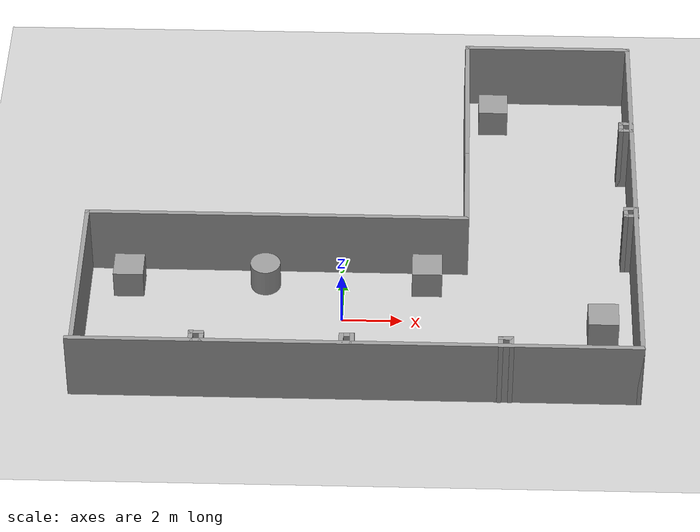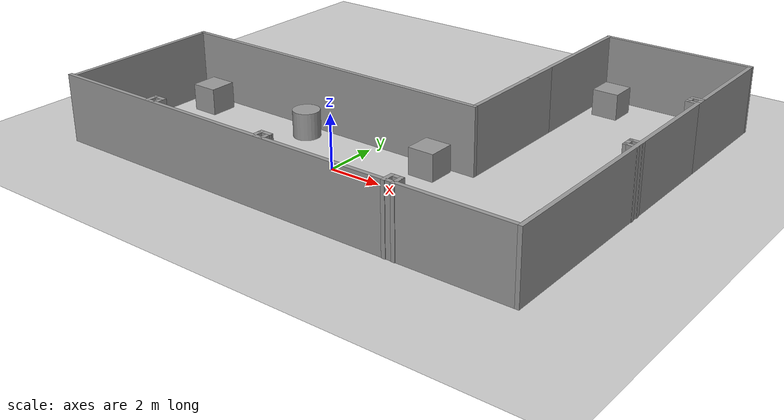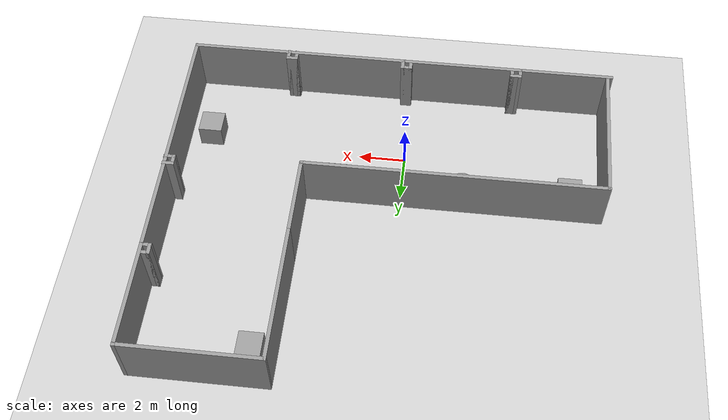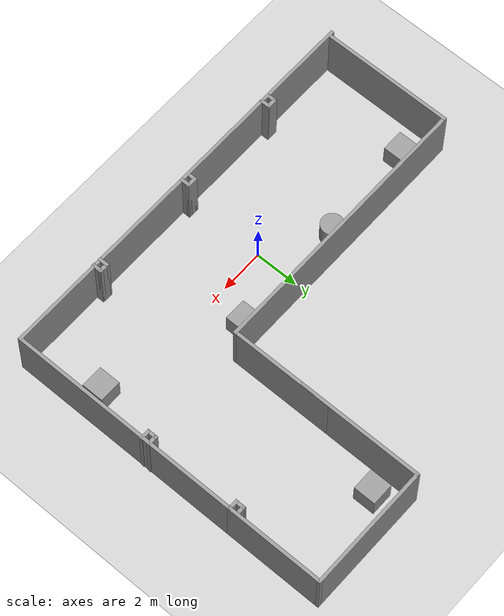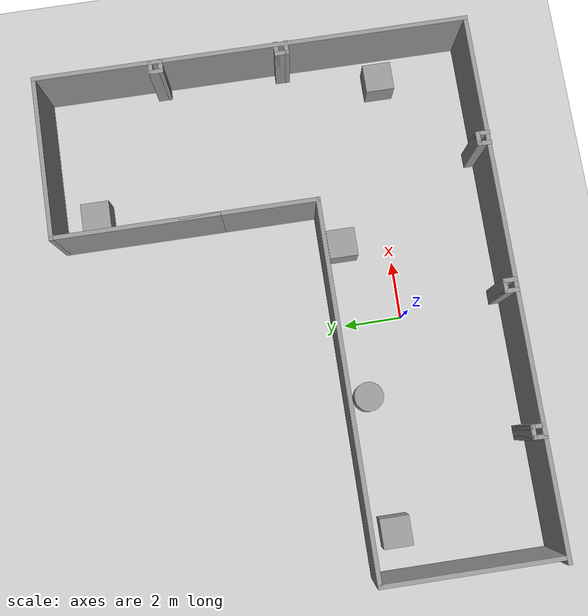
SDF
<sdf version="1.7">
 <world name="default">
  <light name="sun" type="directional">
   <pose>0 0 10 0 -0 0</pose>
   <diffuse>0.8 0.8 0.8 1</diffuse>
   <specular>0.2 0.2 0.2 1</specular>
   <attenuation>
    <range>1000</range>
    <constant>0.9</constant>
    <linear>0.01</linear>
    <quadratic>0.001</quadratic>
   </attenuation>
   <direction>-0.5 0.1 -0.9</direction>
   <spot><inner_angle>0</inner_angle><outer_angle>0</outer_angle><falloff>0</falloff></spot>
  </light>
  <model name="ground_plane">
   <static>1</static>
   <link name="link">
    <collision name="collision">
     <geometry><plane><normal>0 0 1</normal><size>100 100</size></plane></geometry>
     <surface>
      <contact><collide_bitmask>65535</collide_bitmask></contact>
      <friction><ode><mu>100</mu><mu2>50</mu2></ode></friction>
     </surface>
    </collision>
    <visual name="visual">
     <cast_shadows>0</cast_shadows>
     <geometry><plane><normal>0 0 1</normal><size>100 100</size></plane></geometry>
     <material>
      <script><uri>file://media/materials/scripts/gazebo.material</uri><name>Gazebo/Grey</name></script>
     </material>
    </visual>
   </link>
  </model>
  <gravity>0 0 -9.8</gravity>
  <magnetic_field>6e-06 2.3e-05 -4.2e-05</magnetic_field>
  <atmosphere type="adiabatic"/>
  <physics type="ode">
   <max_step_size>0.001</max_step_size>
   <real_time_factor>1</real_time_factor>
   <real_time_update_rate>1000</real_time_update_rate>
  </physics>
  <scene><ambient>0.4 0.4 0.4 1</ambient><background>0.7 0.7 0.7 1</background><shadows>1</shadows></scene>
  <spherical_coordinates>
   <surface_model>EARTH_WGS84</surface_model>
   <latitude_deg>0</latitude_deg>
   <longitude_deg>0</longitude_deg>
   <elevation>0</elevation>
   <heading_deg>0</heading_deg>
  </spherical_coordinates>
  <model name="hanhlang5">
   <pose>0.510065 3.86268 0 0 -0 0</pose>
   <link name="Wall_10">
    <collision name="Wall_10_Collision">
     <geometry><box><size>4.75 0.15 2.5</size></box></geometry>
     <pose>0 0 1.25 0 -0 0</pose>
    </collision>
    <visual name="Wall_10_Visual">
     <pose>0 0 1.25 0 -0 0</pose>
     <geometry><box><size>4.75 0.15 2.5</size></box></geometry>
     <material>
      <script><uri>file://media/materials/scripts/gazebo.material</uri><name>Gazebo/Grey</name></script>
      <ambient>1 1 1 1</ambient>
     </material>
     <meta><layer>0</layer></meta>
    </visual>
    <pose>3.56396 0.835046 0 0 -0 -1.5708</pose>
   </link>
   <link name="Wall_11">
    <collision name="Wall_11_Collision">
     <geometry><box><size>12.75 0.15 2.5</size></box></geometry>
     <pose>0 0 1.25 0 -0 0</pose>
    </collision>
    <visual name="Wall_11_Visual">
     <pose>0 0 1.25 0 -0 0</pose>
     <geometry><box><size>12.75 0.15 2.5</size></box></geometry>
     <material>
      <script><uri>file://media/materials/scripts/gazebo.material</uri><name>Gazebo/Grey</name></script>
      <ambient>1 1 1 1</ambient>
     </material>
     <meta><layer>0</layer></meta>
    </visual>
    <pose>-2.73604 -1.46495 0 0 -0 3.14159</pose>
   </link>
   <link name="Wall_12">
    <collision name="Wall_12_Collision">
     <geometry><box><size>0.15 0.15 2.5</size></box></geometry>
     <pose>0 0 1.25 0 -0 0</pose>
    </collision>
    <visual name="Wall_12_Visual">
     <pose>0 0 1.25 0 -0 0</pose>
     <geometry><box><size>0.15 0.15 2.5</size></box></geometry>
     <material>
      <script><uri>file://media/materials/scripts/gazebo.material</uri><name>Gazebo/Grey</name></script>
      <ambient>1 1 1 1</ambient>
     </material>
     <meta><layer>0</layer></meta>
    </visual>
    <pose>-9.03604 -1.46495 0 0 -0 0</pose>
   </link>
   <link name="Wall_13">
    <collision name="Wall_13_Collision">
     <geometry><box><size>6 0.15 2.5</size></box></geometry>
     <pose>0 0 1.25 0 -0 0</pose>
    </collision>
    <visual name="Wall_13_Visual">
     <pose>0 0 1.25 0 -0 0</pose>
     <geometry><box><size>6 0.15 2.5</size></box></geometry>
     <material>
      <script><uri>file://media/materials/scripts/gazebo.material</uri><name>Gazebo/Grey</name></script>
      <ambient>1 1 1 1</ambient>
     </material>
     <meta><layer>0</layer></meta>
    </visual>
    <pose>-9.03604 -4.38995 0 0 -0 -1.5708</pose>
   </link>
   <link name="Wall_15">
    <collision name="Wall_15_Collision">
     <geometry><box><size>4.5 0.15 2.5</size></box></geometry>
     <pose>0 0 1.25 0 -0 0</pose>
    </collision>
    <visual name="Wall_15_Visual">
     <pose>0 0 1.25 0 -0 0</pose>
     <geometry><box><size>4.5 0.15 2.5</size></box></geometry>
     <material>
      <script><uri>file://media/materials/scripts/gazebo.material</uri><name>Gazebo/Grey</name></script>
      <ambient>1 1 1 1</ambient>
     </material>
     <meta><layer>0</layer></meta>
    </visual>
    <pose>9.16396 5.31005 0 0 -0 1.5708</pose>
   </link>
   <link name="Wall_16">
    <collision name="Wall_16_Collision">
     <geometry><box><size>5.75 0.15 2.5</size></box></geometry>
     <pose>0 0 1.25 0 -0 0</pose>
    </collision>
    <visual name="Wall_16_Visual">
     <pose>0 0 1.25 0 -0 0</pose>
     <geometry><box><size>5.75 0.15 2.5</size></box></geometry>
     <material>
      <script><uri>file://media/materials/scripts/gazebo.material</uri><name>Gazebo/Grey</name></script>
      <ambient>1 1 1 1</ambient>
     </material>
     <meta><layer>0</layer></meta>
    </visual>
    <pose>6.36396 7.48505 0 0 -0 3.14159</pose>
   </link>
   <link name="Wall_17">
    <collision name="Wall_17_Collision">
     <geometry><box><size>5.75 0.15 2.5</size></box></geometry>
     <pose>0 0 1.25 0 -0 0</pose>
    </collision>
    <visual name="Wall_17_Visual">
     <pose>0 0 1.25 0 -0 0</pose>
     <geometry><box><size>5.75 0.15 2.5</size></box></geometry>
     <material>
      <script><uri>file://media/materials/scripts/gazebo.material</uri><name>Gazebo/Grey</name></script>
      <ambient>1 1 1 1</ambient>
     </material>
     <meta><layer>0</layer></meta>
    </visual>
    <pose>3.56396 4.68505 0 0 -0 -1.5708</pose>
   </link>
   <link name="Wall_5">
    <collision name="Wall_5_Collision">
     <geometry><box><size>18.5 0.15 2.5</size></box></geometry>
     <pose>0 0 1.25 0 -0 0</pose>
    </collision>
    <visual name="Wall_5_Visual">
     <pose>0 0 1.25 0 -0 0</pose>
     <geometry><box><size>18.5 0.15 2.5</size></box></geometry>
     <material>
      <script><uri>file://media/materials/scripts/gazebo.material</uri><name>Gazebo/Grey</name></script>
      <ambient>1 1 1 1</ambient>
     </material>
     <meta><layer>0</layer></meta>
    </visual>
    <pose>-0.011039 -7.46495 0 0 -0 0</pose>
   </link>
   <link name="Wall_55">
    <collision name="Wall_55_Collision">
     <geometry><box><size>0.5 0.15 2.5</size></box></geometry>
     <pose>0 0 1.25 0 -0 0</pose>
    </collision>
    <visual name="Wall_55_Visual">
     <pose>0 0 1.25 0 -0 0</pose>
     <geometry><box><size>0.5 0.15 2.5</size></box></geometry>
     <material>
      <script><uri>file://media/materials/scripts/gazebo.material</uri><name>Gazebo/Grey</name></script>
      <ambient>1 1 1 1</ambient>
     </material>
     <meta><layer>0</layer></meta>
    </visual>
    <pose>-5.23496 -7.28705 0 0 -0 1.5708</pose>
   </link>
   <link name="Wall_56">
    <collision name="Wall_56_Collision">
     <geometry><box><size>0.5 0.15 2.5</size></box></geometry>
     <pose>0 0 1.25 0 -0 0</pose>
    </collision>
    <visual name="Wall_56_Visual">
     <pose>0 0 1.25 0 -0 0</pose>
     <geometry><box><size>0.5 0.15 2.5</size></box></geometry>
     <material>
      <script><uri>file://media/materials/scripts/gazebo.material</uri><name>Gazebo/Grey</name></script>
      <ambient>1 1 1 1</ambient>
     </material>
     <meta><layer>0</layer></meta>
    </visual>
    <pose>-5.05996 -7.11205 0 0 -0 0</pose>
   </link>
   <link name="Wall_57">
    <collision name="Wall_57_Collision">
     <geometry><box><size>0.5 0.15 2.5</size></box></geometry>
     <pose>0 0 1.25 0 -0 0</pose>
    </collision>
    <visual name="Wall_57_Visual">
     <pose>0 0 1.25 0 -0 0</pose>
     <geometry><box><size>0.5 0.15 2.5</size></box></geometry>
     <material>
      <script><uri>file://media/materials/scripts/gazebo.material</uri><name>Gazebo/Grey</name></script>
      <ambient>1 1 1 1</ambient>
     </material>
     <meta><layer>0</layer></meta>
    </visual>
    <pose>-4.88496 -7.28705 0 0 -0 -1.5708</pose>
   </link>
   <link name="Wall_6">
    <collision name="Wall_6_Collision">
     <geometry><box><size>10.75 0.15 2.5</size></box></geometry>
     <pose>0 0 1.25 0 -0 0</pose>
    </collision>
    <visual name="Wall_6_Visual">
     <pose>0 0 1.25 0 -0 0</pose>
     <geometry><box><size>10.75 0.15 2.5</size></box></geometry>
     <material>
      <script><uri>file://media/materials/scripts/gazebo.material</uri><name>Gazebo/Grey</name></script>
      <ambient>1 1 1 1</ambient>
     </material>
     <meta><layer>0</layer></meta>
    </visual>
    <pose>9.16396 -2.16495 0 0 -0 1.5708</pose>
   </link>
   <link name="Wall_64">
    <collision name="Wall_64_Collision">
     <geometry><box><size>0.5 0.15 2.5</size></box></geometry>
     <pose>0 0 1.25 0 -0 0</pose>
    </collision>
    <visual name="Wall_64_Visual">
     <pose>0 0 1.25 0 -0 0</pose>
     <geometry><box><size>0.5 0.15 2.5</size></box></geometry>
     <material>
      <script><uri>file://media/materials/scripts/gazebo.material</uri><name>Gazebo/Grey</name></script>
      <ambient>1 1 1 1</ambient>
     </material>
     <meta><layer>0</layer></meta>
    </visual>
    <pose>-0.427961 -7.28705 0 0 -0 1.5708</pose>
   </link>
   <link name="Wall_65">
    <collision name="Wall_65_Collision">
     <geometry><box><size>0.5 0.15 2.5</size></box></geometry>
     <pose>0 0 1.25 0 -0 0</pose>
    </collision>
    <visual name="Wall_65_Visual">
     <pose>0 0 1.25 0 -0 0</pose>
     <geometry><box><size>0.5 0.15 2.5</size></box></geometry>
     <material>
      <script><uri>file://media/materials/scripts/gazebo.material</uri><name>Gazebo/Grey</name></script>
      <ambient>1 1 1 1</ambient>
     </material>
     <meta><layer>0</layer></meta>
    </visual>
    <pose>-0.252961 -7.11205 0 0 -0 0</pose>
   </link>
   <link name="Wall_66">
    <collision name="Wall_66_Collision">
     <geometry><box><size>0.5 0.15 2.5</size></box></geometry>
     <pose>0 0 1.25 0 -0 0</pose>
    </collision>
    <visual name="Wall_66_Visual">
     <pose>0 0 1.25 0 -0 0</pose>
     <geometry><box><size>0.5 0.15 2.5</size></box></geometry>
     <material>
      <script><uri>file://media/materials/scripts/gazebo.material</uri><name>Gazebo/Grey</name></script>
      <ambient>1 1 1 1</ambient>
     </material>
     <meta><layer>0</layer></meta>
    </visual>
    <pose>-0.077961 -7.28705 0 0 -0 -1.5708</pose>
   </link>
   <link name="Wall_68">
    <collision name="Wall_68_Collision">
     <geometry><box><size>0.5 0.15 2.5</size></box></geometry>
     <pose>0 0 1.25 0 -0 0</pose>
    </collision>
    <visual name="Wall_68_Visual">
     <pose>0 0 1.25 0 -0 0</pose>
     <geometry><box><size>0.5 0.15 2.5</size></box></geometry>
     <material>
      <script><uri>file://media/materials/scripts/gazebo.material</uri><name>Gazebo/Grey</name></script>
      <ambient>1 1 1 1</ambient>
     </material>
     <meta><layer>0</layer></meta>
    </visual>
    <pose>4.65504 -7.31005 0 0 -0 1.5708</pose>
   </link>
   <link name="Wall_69">
    <collision name="Wall_69_Collision">
     <geometry><box><size>0.5 0.15 2.5</size></box></geometry>
     <pose>0 0 1.25 0 -0 0</pose>
    </collision>
    <visual name="Wall_69_Visual">
     <pose>0 0 1.25 0 -0 0</pose>
     <geometry><box><size>0.5 0.15 2.5</size></box></geometry>
     <material>
      <script><uri>file://media/materials/scripts/gazebo.material</uri><name>Gazebo/Grey</name></script>
      <ambient>1 1 1 1</ambient>
     </material>
     <meta><layer>0</layer></meta>
    </visual>
    <pose>4.83004 -7.13505 0 0 -0 0</pose>
   </link>
   <link name="Wall_70">
    <collision name="Wall_70_Collision">
     <geometry><box><size>0.5 0.15 2.5</size></box></geometry>
     <pose>0 0 1.25 0 -0 0</pose>
    </collision>
    <visual name="Wall_70_Visual">
     <pose>0 0 1.25 0 -0 0</pose>
     <geometry><box><size>0.5 0.15 2.5</size></box></geometry>
     <material>
      <script><uri>file://media/materials/scripts/gazebo.material</uri><name>Gazebo/Grey</name></script>
      <ambient>1 1 1 1</ambient>
     </material>
     <meta><layer>0</layer></meta>
    </visual>
    <pose>5.00504 -7.31005 0 0 -0 -1.5708</pose>
   </link>
   <link name="Wall_72">
    <collision name="Wall_72_Collision">
     <geometry><box><size>0.5 0.15 2.5</size></box></geometry>
     <pose>0 0 1.25 0 -0 0</pose>
    </collision>
    <visual name="Wall_72_Visual">
     <pose>0 0 1.25 0 -0 0</pose>
     <geometry><box><size>0.5 0.15 2.5</size></box></geometry>
     <material>
      <script><uri>file://media/materials/scripts/gazebo.material</uri><name>Gazebo/Grey</name></script>
      <ambient>1 1 1 1</ambient>
     </material>
     <meta><layer>0</layer></meta>
    </visual>
    <pose>9.01104 -1.20605 0 0 -0 3.14159</pose>
   </link>
   <link name="Wall_73">
    <collision name="Wall_73_Collision">
     <geometry><box><size>0.5 0.15 2.5</size></box></geometry>
     <pose>0 0 1.25 0 -0 0</pose>
    </collision>
    <visual name="Wall_73_Visual">
     <pose>0 0 1.25 0 -0 0</pose>
     <geometry><box><size>0.5 0.15 2.5</size></box></geometry>
     <material>
      <script><uri>file://media/materials/scripts/gazebo.material</uri><name>Gazebo/Grey</name></script>
      <ambient>1 1 1 1</ambient>
     </material>
     <meta><layer>0</layer></meta>
    </visual>
    <pose>8.83604 -1.03105 0 0 -0 1.5708</pose>
   </link>
   <link name="Wall_74">
    <collision name="Wall_74_Collision">
     <geometry><box><size>0.5 0.15 2.5</size></box></geometry>
     <pose>0 0 1.25 0 -0 0</pose>
    </collision>
    <visual name="Wall_74_Visual">
     <pose>0 0 1.25 0 -0 0</pose>
     <geometry><box><size>0.5 0.15 2.5</size></box></geometry>
     <material>
      <script><uri>file://media/materials/scripts/gazebo.material</uri><name>Gazebo/Grey</name></script>
      <ambient>1 1 1 1</ambient>
     </material>
     <meta><layer>0</layer></meta>
    </visual>
    <pose>9.01104 -0.856047 0 0 -0 0</pose>
   </link>
   <link name="Wall_76">
    <collision name="Wall_76_Collision">
     <geometry><box><size>0.5 0.15 2.5</size></box></geometry>
     <pose>0 0 1.25 0 -0 0</pose>
    </collision>
    <visual name="Wall_76_Visual">
     <pose>0 0 1.25 0 -0 0</pose>
     <geometry><box><size>0.5 0.15 2.5</size></box></geometry>
     <material>
      <script><uri>file://media/materials/scripts/gazebo.material</uri><name>Gazebo/Grey</name></script>
      <ambient>1 1 1 1</ambient>
     </material>
     <meta><layer>0</layer></meta>
    </visual>
    <pose>8.98896 3.13505 0 0 -0 3.14159</pose>
   </link>
   <link name="Wall_79">
    <collision name="Wall_79_Collision">
     <geometry><box><size>0.5 0.15 2.5</size></box></geometry>
     <pose>0 0 1.25 0 -0 0</pose>
    </collision>
    <visual name="Wall_79_Visual">
     <pose>0 0 1.25 0 -0 0</pose>
     <geometry><box><size>0.5 0.15 2.5</size></box></geometry>
     <material>
      <script><uri>file://media/materials/scripts/gazebo.material</uri><name>Gazebo/Grey</name></script>
      <ambient>1 1 1 1</ambient>
     </material>
     <meta><layer>0</layer></meta>
    </visual>
    <pose>8.81396 3.31005 0 0 -0 1.5708</pose>
   </link>
   <link name="Wall_83">
    <collision name="Wall_83_Collision">
     <geometry><box><size>0.5 0.15 2.5</size></box></geometry>
     <pose>0 0 1.25 0 -0 0</pose>
    </collision>
    <visual name="Wall_83_Visual">
     <pose>0 0 1.25 0 -0 0</pose>
     <geometry><box><size>0.5 0.15 2.5</size></box></geometry>
     <material>
      <script><uri>file://media/materials/scripts/gazebo.material</uri><name>Gazebo/Grey</name></script>
      <ambient>1 1 1 1</ambient>
     </material>
     <meta><layer>0</layer></meta>
    </visual>
    <pose>8.98896 3.48505 0 0 -0 0</pose>
   </link>
   <static>1</static>
  </model>
  <model name="unit_box">
   <pose>-7.13345 1.46727 0.499995 0 1e-05 0</pose>
   <link name="link">
    <inertial>
     <mass>1</mass>
     <inertia>
      <ixx>0.166667</ixx>
      <ixy>0</ixy>
      <ixz>0</ixz>
      <iyy>0.166667</iyy>
      <iyz>0</iyz>
      <izz>0.166667</izz>
     </inertia>
    </inertial>
    <collision name="collision"><geometry><box><size>1 1 1</size></box></geometry></collision>
    <visual name="visual">
     <geometry><box><size>1 1 1</size></box></geometry>
     <material>
      <script><name>Gazebo/Grey</name><uri>file://media/materials/scripts/gazebo.material</uri></script>
     </material>
    </visual>
   </link>
  </model>
  <model name="unit_cylinder">
   <pose>-2.59578 1.63774 0.499993 -3e-06 -3e-06 0</pose>
   <link name="link">
    <inertial>
     <mass>1</mass>
     <inertia><ixx>0.145833</ixx><ixy>0</ixy><ixz>0</ixz><iyy>0.145833</iyy><iyz>0</iyz><izz>0.125</izz></inertia>
    </inertial>
    <collision name="collision">
     <geometry><cylinder><radius>0.5</radius><length>1</length></cylinder></geometry>
    </collision>
    <visual name="visual">
     <geometry><cylinder><radius>0.5</radius><length>1</length></cylinder></geometry>
     <material>
      <script><name>Gazebo/Grey</name><uri>file://media/materials/scripts/gazebo.material</uri></script>
     </material>
    </visual>
   </link>
  </model>
  <model name="unit_box_0">
   <pose>2.7918 1.7078 0.499995 0 1e-05 0</pose>
   <link name="link">
    <inertial>
     <mass>1</mass>
     <inertia>
      <ixx>0.166667</ixx>
      <ixy>0</ixy>
      <ixz>0</ixz>
      <iyy>0.166667</iyy>
      <iyz>0</iyz>
      <izz>0.166667</izz>
     </inertia>
    </inertial>
    <collision name="collision"><geometry><box><size>1 1 1</size></box></geometry></collision>
    <visual name="visual">
     <geometry><box><size>1 1 1</size></box></geometry>
     <material>
      <script><name>Gazebo/Grey</name><uri>file://media/materials/scripts/gazebo.material</uri></script>
     </material>
    </visual>
   </link>
  </model>
  <model name="unit_box_1">
   <pose>8.58972 -0.530609 0.499995 -1e-05 -0 0</pose>
   <link name="link">
    <inertial>
     <mass>1</mass>
     <inertia>
      <ixx>0.166667</ixx>
      <ixy>0</ixy>
      <ixz>0</ixz>
      <iyy>0.166667</iyy>
      <iyz>0</iyz>
      <izz>0.166667</izz>
     </inertia>
    </inertial>
    <collision name="collision"><geometry><box><size>1 1 1</size></box></geometry></collision>
    <visual name="visual">
     <geometry><box><size>1 1 1</size></box></geometry>
     <material>
      <script><name>Gazebo/Grey</name><uri>file://media/materials/scripts/gazebo.material</uri></script>
     </material>
    </visual>
   </link>
  </model>
  <model name="unit_box_2">
   <pose>5.00858 10.0592 0.5 0 -0 0</pose>
   <link name="link">
    <inertial>
     <mass>1</mass>
     <inertia>
      <ixx>0.166667</ixx>
      <ixy>0</ixy>
      <ixz>0</ixz>
      <iyy>0.166667</iyy>
      <iyz>0</iyz>
      <izz>0.166667</izz>
     </inertia>
    </inertial>
    <collision name="collision"><geometry><box><size>1 1 1</size></box></geometry></collision>
    <visual name="visual">
     <geometry><box><size>1 1 1</size></box></geometry>
     <material>
      <script><name>Gazebo/Grey</name><uri>file://media/materials/scripts/gazebo.material</uri></script>
     </material>
    </visual>
   </link>
  </model>
 </world>
</sdf>
